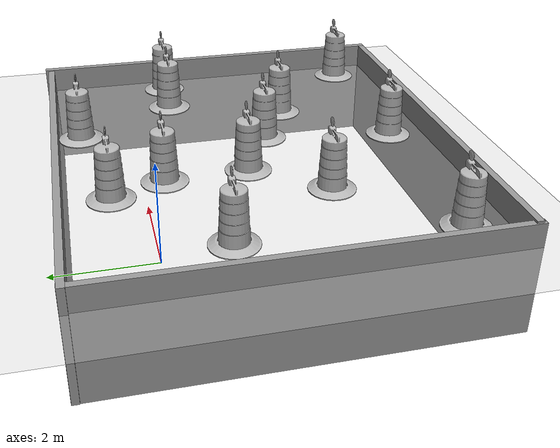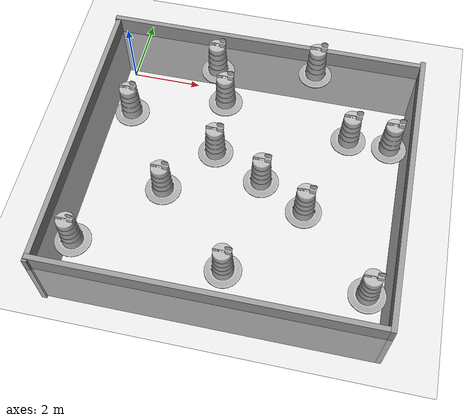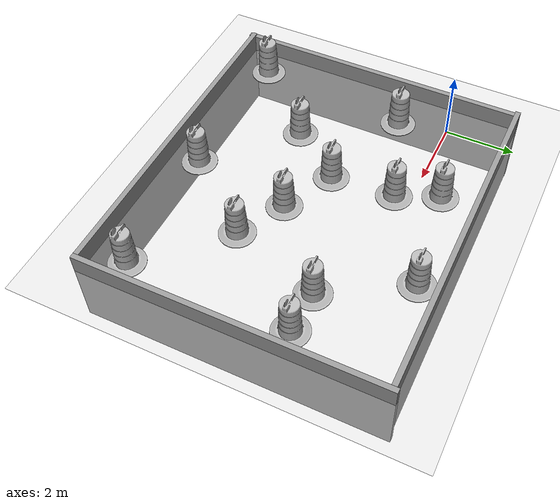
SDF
<sdf version="1.7">
 <world name="default">
  <light name="sun" type="directional">
   <pose>0 0 10 0 -0 0</pose>
   <diffuse>0.8 0.8 0.8 1</diffuse>
   <specular>0.2 0.2 0.2 1</specular>
   <attenuation>
    <range>1000</range>
    <constant>0.9</constant>
    <linear>0.01</linear>
    <quadratic>0.001</quadratic>
   </attenuation>
   <direction>-0.5 0.1 -0.9</direction>
   <spot><inner_angle>0</inner_angle><outer_angle>0</outer_angle><falloff>0</falloff></spot>
  </light>
  <model name="ground_plane">
   <static>1</static>
   <link name="link">
    <collision name="collision">
     <geometry><plane><normal>0 0 1</normal><size>100 100</size></plane></geometry>
     <surface>
      <contact><collide_bitmask>65535</collide_bitmask></contact>
      <friction><ode><mu>100</mu><mu2>50</mu2></ode></friction>
     </surface>
    </collision>
    <visual name="visual">
     <cast_shadows>0</cast_shadows>
     <geometry><plane><normal>0 0 1</normal><size>100 100</size></plane></geometry>
     <material>
      <script><uri>file://media/materials/scripts/gazebo.material</uri><name>Gazebo/Grey</name></script>
     </material>
    </visual>
   </link>
  </model>
  <gravity>0 0 -9.8</gravity>
  <magnetic_field>6e-06 2.3e-05 -4.2e-05</magnetic_field>
  <atmosphere type="adiabatic"/>
  <physics type="ode">
   <max_step_size>0.001</max_step_size>
   <real_time_factor>1</real_time_factor>
   <real_time_update_rate>1000</real_time_update_rate>
  </physics>
  <scene><ambient>0.4 0.4 0.4 1</ambient><background>0.7 0.7 0.7 1</background><shadows>1</shadows></scene>
  <audio><device>default</device></audio>
  <spherical_coordinates>
   <surface_model>EARTH_WGS84</surface_model>
   <latitude_deg>0</latitude_deg>
   <longitude_deg>0</longitude_deg>
   <elevation>0</elevation>
   <heading_deg>0</heading_deg>
  </spherical_coordinates>
  <model name="Arena_0">
   <link name="Wall_1">
    <pose>-4.70693 -0.060981 -1.98555 0 0 -1.5708</pose>
    <visual name="Wall_1_Visual">
     <pose>0 0 1.25 0 -0 0</pose>
     <geometry><box><size>8.75 0.15 2.5</size></box></geometry>
     <material>
      <script><uri>file://media/materials/scripts/gazebo.material</uri><name>Gazebo/Grey</name></script>
      <ambient>1 1 1 1</ambient>
      <shader type="pixel"/>
     </material>
     <meta><layer>0</layer></meta>
    </visual>
    <collision name="Wall_1_Collision">
     <pose>0 0 1.25 0 -0 0</pose>
     <geometry><box><size>8.75 0.15 2.5</size></box></geometry>
     <surface>
      <friction>
       <ode><mu>1</mu><mu2>1</mu2><fdir1>0 0 0</fdir1><slip1>0</slip1><slip2>0</slip2></ode>
       <torsional>
        <coefficient>1</coefficient>
        <patch_radius>0</patch_radius>
        <surface_radius>0</surface_radius>
        <use_patch_radius>1</use_patch_radius>
        <ode><slip>0</slip></ode>
       </torsional>
      </friction>
      <bounce><restitution_coefficient>0</restitution_coefficient><threshold>1e+06</threshold></bounce>
      <contact>
       <collide_without_contact>0</collide_without_contact>
       <collide_without_contact_bitmask>1</collide_without_contact_bitmask>
       <collide_bitmask>1</collide_bitmask>
       <ode>
        <soft_cfm>0</soft_cfm>
        <soft_erp>0.2</soft_erp>
        <kp>1e+13</kp>
        <kd>1</kd>
        <max_vel>0.01</max_vel>
        <min_depth>0</min_depth>
       </ode>
       <bullet>
        <split_impulse>1</split_impulse>
        <split_impulse_penetration_threshold>-0.01</split_impulse_penetration_threshold>
        <soft_cfm>0</soft_cfm>
        <soft_erp>0.2</soft_erp>
        <kp>1e+13</kp>
        <kd>1</kd>
       </bullet>
      </contact>
     </surface>
    </collision>
   </link>
   <link name="Wall_2">
    <pose>0.121352 -4.3 -1.9408 0 -0 0</pose>
    <visual name="Wall_2_Visual">
     <pose>0 0 1.25 0 -0 0</pose>
     <geometry><box><size>9.75 0.15 2.5</size></box></geometry>
     <material>
      <script><uri>file://media/materials/scripts/gazebo.material</uri><name>Gazebo/Grey</name></script>
      <ambient>1 1 1 1</ambient>
      <shader type="pixel"/>
     </material>
     <meta><layer>0</layer></meta>
    </visual>
    <collision name="Wall_2_Collision">
     <pose>0 0 1.25 0 -0 0</pose>
     <geometry><box><size>9.75 0.15 2.5</size></box></geometry>
     <surface>
      <friction>
       <ode><mu>1</mu><mu2>1</mu2><fdir1>0 0 0</fdir1><slip1>0</slip1><slip2>0</slip2></ode>
       <torsional>
        <coefficient>1</coefficient>
        <patch_radius>0</patch_radius>
        <surface_radius>0</surface_radius>
        <use_patch_radius>1</use_patch_radius>
        <ode><slip>0</slip></ode>
       </torsional>
      </friction>
      <bounce><restitution_coefficient>0</restitution_coefficient><threshold>1e+06</threshold></bounce>
      <contact>
       <collide_without_contact>0</collide_without_contact>
       <collide_without_contact_bitmask>1</collide_without_contact_bitmask>
       <collide_bitmask>1</collide_bitmask>
       <ode>
        <soft_cfm>0</soft_cfm>
        <soft_erp>0.2</soft_erp>
        <kp>1e+13</kp>
        <kd>1</kd>
        <max_vel>0.01</max_vel>
        <min_depth>0</min_depth>
       </ode>
       <bullet>
        <split_impulse>1</split_impulse>
        <split_impulse_penetration_threshold>-0.01</split_impulse_penetration_threshold>
        <soft_cfm>0</soft_cfm>
        <soft_erp>0.2</soft_erp>
        <kp>1e+13</kp>
        <kd>1</kd>
       </bullet>
      </contact>
     </surface>
    </collision>
   </link>
   <link name="Wall_3">
    <pose>4.92135 0 -1.93995 0 -0 1.5708</pose>
    <visual name="Wall_3_Visual">
     <pose>0 0 1.25 0 -0 0</pose>
     <geometry><box><size>8.75 0.15 2.5</size></box></geometry>
     <material>
      <script><uri>file://media/materials/scripts/gazebo.material</uri><name>Gazebo/Grey</name></script>
      <ambient>1 1 1 1</ambient>
      <shader type="pixel"/>
     </material>
     <meta><layer>0</layer></meta>
    </visual>
    <collision name="Wall_3_Collision">
     <pose>0 0 1.25 0 -0 0</pose>
     <geometry><box><size>8.75 0.15 2.5</size></box></geometry>
     <surface>
      <friction>
       <ode><mu>1</mu><mu2>1</mu2><fdir1>0 0 0</fdir1><slip1>0</slip1><slip2>0</slip2></ode>
       <torsional>
        <coefficient>1</coefficient>
        <patch_radius>0</patch_radius>
        <surface_radius>0</surface_radius>
        <use_patch_radius>1</use_patch_radius>
        <ode><slip>0</slip></ode>
       </torsional>
      </friction>
      <bounce><restitution_coefficient>0</restitution_coefficient><threshold>1e+06</threshold></bounce>
      <contact>
       <collide_without_contact>0</collide_without_contact>
       <collide_without_contact_bitmask>1</collide_without_contact_bitmask>
       <collide_bitmask>1</collide_bitmask>
       <ode>
        <soft_cfm>0</soft_cfm>
        <soft_erp>0.2</soft_erp>
        <kp>1e+13</kp>
        <kd>1</kd>
        <max_vel>0.01</max_vel>
        <min_depth>0</min_depth>
       </ode>
       <bullet>
        <split_impulse>1</split_impulse>
        <split_impulse_penetration_threshold>-0.01</split_impulse_penetration_threshold>
        <soft_cfm>0</soft_cfm>
        <soft_erp>0.2</soft_erp>
        <kp>1e+13</kp>
        <kd>1</kd>
       </bullet>
      </contact>
     </surface>
    </collision>
   </link>
   <link name="Wall_4">
    <pose>0.054795 4.23432 -1.96261 0 -0 3.14159</pose>
    <visual name="Wall_4_Visual">
     <pose>0 0 1.25 0 -0 0</pose>
     <geometry><box><size>9.75 0.15 2.5</size></box></geometry>
     <material>
      <script><uri>file://media/materials/scripts/gazebo.material</uri><name>Gazebo/Grey</name></script>
      <ambient>1 1 1 1</ambient>
      <shader type="pixel"/>
     </material>
     <meta><layer>0</layer></meta>
    </visual>
    <collision name="Wall_4_Collision">
     <pose>0 0 1.25 0 -0 0</pose>
     <geometry><box><size>9.75 0.15 2.5</size></box></geometry>
     <surface>
      <friction>
       <ode><mu>1</mu><mu2>1</mu2><fdir1>0 0 0</fdir1><slip1>0</slip1><slip2>0</slip2></ode>
       <torsional>
        <coefficient>1</coefficient>
        <patch_radius>0</patch_radius>
        <surface_radius>0</surface_radius>
        <use_patch_radius>1</use_patch_radius>
        <ode><slip>0</slip></ode>
       </torsional>
      </friction>
      <bounce><restitution_coefficient>0</restitution_coefficient><threshold>1e+06</threshold></bounce>
      <contact>
       <collide_without_contact>0</collide_without_contact>
       <collide_without_contact_bitmask>1</collide_without_contact_bitmask>
       <collide_bitmask>1</collide_bitmask>
       <ode>
        <soft_cfm>0</soft_cfm>
        <soft_erp>0.2</soft_erp>
        <kp>1e+13</kp>
        <kd>1</kd>
        <max_vel>0.01</max_vel>
        <min_depth>0</min_depth>
       </ode>
       <bullet>
        <split_impulse>1</split_impulse>
        <split_impulse_penetration_threshold>-0.01</split_impulse_penetration_threshold>
        <soft_cfm>0</soft_cfm>
        <soft_erp>0.2</soft_erp>
        <kp>1e+13</kp>
        <kd>1</kd>
       </bullet>
      </contact>
     </surface>
    </collision>
   </link>
   <static>1</static>
   <pose>3.71332 -2.49759 0 0 -0 0</pose>
  </model>
  <model name="Construction Barrel">
   <link name="link">
    <inertial>
     <pose>0 0 0.4 0 -0 0</pose>
     <mass>500</mass>
     <inertia><ixx>51.2096</ixx><iyy>51.2096</iyy><izz>25</izz><ixy>0</ixy><ixz>0</ixz><iyz>0</iyz></inertia>
    </inertial>
    <collision name="collision">
     <geometry><mesh><uri>model://construction_barrel/meshes/construction_barrel.dae</uri></mesh></geometry>
    </collision>
    <visual name="visual">
     <geometry><mesh><uri>model://construction_barrel/meshes/construction_barrel.dae</uri></mesh></geometry>
    </visual>
   </link>
   <pose>0.290686 -1.39648 -1e-06 3e-06 7e-06 -2.5e-05</pose>
  </model>
  <model name="Construction Barrel_0">
   <link name="link">
    <inertial>
     <pose>0 0 0.4 0 -0 0</pose>
     <mass>500</mass>
     <inertia><ixx>51.2096</ixx><iyy>51.2096</iyy><izz>25</izz><ixy>0</ixy><ixz>0</ixz><iyz>0</iyz></inertia>
    </inertial>
    <collision name="collision">
     <geometry><mesh><uri>model://construction_barrel/meshes/construction_barrel.dae</uri></mesh></geometry>
    </collision>
    <visual name="visual">
     <geometry><mesh><uri>model://construction_barrel/meshes/construction_barrel.dae</uri></mesh></geometry>
    </visual>
   </link>
   <pose>2.46104 0.694995 -1e-06 2e-06 -2e-06 -2.5e-05</pose>
  </model>
  <model name="Construction Barrel_1">
   <link name="link">
    <inertial>
     <pose>0 0 0.4 0 -0 0</pose>
     <mass>500</mass>
     <inertia><ixx>51.2096</ixx><iyy>51.2096</iyy><izz>25</izz><ixy>0</ixy><ixz>0</ixz><iyz>0</iyz></inertia>
    </inertial>
    <collision name="collision">
     <geometry><mesh><uri>model://construction_barrel/meshes/construction_barrel.dae</uri></mesh></geometry>
    </collision>
    <visual name="visual">
     <geometry><mesh><uri>model://construction_barrel/meshes/construction_barrel.dae</uri></mesh></geometry>
    </visual>
   </link>
   <pose>2.95702 -0.464641 -1e-06 1e-06 4e-06 -2.3e-05</pose>
  </model>
  <model name="Construction Barrel_2">
   <link name="link">
    <inertial>
     <pose>0 0 0.4 0 -0 0</pose>
     <mass>500</mass>
     <inertia><ixx>51.2096</ixx><iyy>51.2096</iyy><izz>25</izz><ixy>0</ixy><ixz>0</ixz><iyz>0</iyz></inertia>
    </inertial>
    <collision name="collision">
     <geometry><mesh><uri>model://construction_barrel/meshes/construction_barrel.dae</uri></mesh></geometry>
    </collision>
    <visual name="visual">
     <geometry><mesh><uri>model://construction_barrel/meshes/construction_barrel.dae</uri></mesh></geometry>
    </visual>
   </link>
   <pose>3.06267 -2.28856 1e-06 3e-06 2e-06 -2e-05</pose>
  </model>
  <model name="Construction Barrel_3">
   <link name="link">
    <inertial>
     <pose>0 0 0.4 0 -0 0</pose>
     <mass>500</mass>
     <inertia><ixx>51.2096</ixx><iyy>51.2096</iyy><izz>25</izz><ixy>0</ixy><ixz>0</ixz><iyz>0</iyz></inertia>
    </inertial>
    <collision name="collision">
     <geometry><mesh><uri>model://construction_barrel/meshes/construction_barrel.dae</uri></mesh></geometry>
    </collision>
    <visual name="visual">
     <geometry><mesh><uri>model://construction_barrel/meshes/construction_barrel.dae</uri></mesh></geometry>
    </visual>
   </link>
   <pose>1.88498 -3.80125 -0 1e-06 -1e-06 -1.8e-05</pose>
  </model>
  <model name="Construction Barrel_4">
   <link name="link">
    <inertial>
     <pose>0 0 0.4 0 -0 0</pose>
     <mass>500</mass>
     <inertia><ixx>51.2096</ixx><iyy>51.2096</iyy><izz>25</izz><ixy>0</ixy><ixz>0</ixz><iyz>0</iyz></inertia>
    </inertial>
    <collision name="collision">
     <geometry><mesh><uri>model://construction_barrel/meshes/construction_barrel.dae</uri></mesh></geometry>
    </collision>
    <visual name="visual">
     <geometry><mesh><uri>model://construction_barrel/meshes/construction_barrel.dae</uri></mesh></geometry>
    </visual>
   </link>
   <pose>-0.101823 -5.85085 0 0 0 -1.7e-05</pose>
  </model>
  <model name="Construction Barrel_5">
   <link name="link">
    <inertial>
     <pose>0 0 0.4 0 -0 0</pose>
     <mass>500</mass>
     <inertia><ixx>51.2096</ixx><iyy>51.2096</iyy><izz>25</izz><ixy>0</ixy><ixz>0</ixz><iyz>0</iyz></inertia>
    </inertial>
    <collision name="collision">
     <geometry><mesh><uri>model://construction_barrel/meshes/construction_barrel.dae</uri></mesh></geometry>
    </collision>
    <visual name="visual">
     <geometry><mesh><uri>model://construction_barrel/meshes/construction_barrel.dae</uri></mesh></geometry>
    </visual>
   </link>
   <pose>4.08595 -5.89269 -2e-06 8e-06 -4e-06 -1.7e-05</pose>
  </model>
  <model name="Construction Barrel_6">
   <link name="link">
    <inertial>
     <pose>0 0 0.4 0 -0 0</pose>
     <mass>500</mass>
     <inertia><ixx>51.2096</ixx><iyy>51.2096</iyy><izz>25</izz><ixy>0</ixy><ixz>0</ixz><iyz>0</iyz></inertia>
    </inertial>
    <collision name="collision">
     <geometry><mesh><uri>model://construction_barrel/meshes/construction_barrel.dae</uri></mesh></geometry>
    </collision>
    <visual name="visual">
     <geometry><mesh><uri>model://construction_barrel/meshes/construction_barrel.dae</uri></mesh></geometry>
    </visual>
   </link>
   <pose>4.54444 -3.00407 -2e-06 2e-06 7e-06 -1.5e-05</pose>
  </model>
  <model name="Construction Barrel_7">
   <link name="link">
    <inertial>
     <pose>0 0 0.4 0 -0 0</pose>
     <mass>500</mass>
     <inertia><ixx>51.2096</ixx><iyy>51.2096</iyy><izz>25</izz><ixy>0</ixy><ixz>0</ixz><iyz>0</iyz></inertia>
    </inertial>
    <collision name="collision">
     <geometry><mesh><uri>model://construction_barrel/meshes/construction_barrel.dae</uri></mesh></geometry>
    </collision>
    <visual name="visual">
     <geometry><mesh><uri>model://construction_barrel/meshes/construction_barrel.dae</uri></mesh></geometry>
    </visual>
   </link>
   <pose>7.97803 -1.12489 -0 0 0 -1.1e-05</pose>
  </model>
  <model name="Construction Barrel_8">
   <link name="link">
    <inertial>
     <pose>0 0 0.4 0 -0 0</pose>
     <mass>500</mass>
     <inertia><ixx>51.2096</ixx><iyy>51.2096</iyy><izz>25</izz><ixy>0</ixy><ixz>0</ixz><iyz>0</iyz></inertia>
    </inertial>
    <collision name="collision">
     <geometry><mesh><uri>model://construction_barrel/meshes/construction_barrel.dae</uri></mesh></geometry>
    </collision>
    <visual name="visual">
     <geometry><mesh><uri>model://construction_barrel/meshes/construction_barrel.dae</uri></mesh></geometry>
    </visual>
   </link>
   <pose>6.78278 -1.09482 -1e-06 3e-06 1e-05 -1.1e-05</pose>
  </model>
  <model name="Construction Barrel_9">
   <link name="link">
    <inertial>
     <pose>0 0 0.4 0 -0 0</pose>
     <mass>500</mass>
     <inertia><ixx>51.2096</ixx><iyy>51.2096</iyy><izz>25</izz><ixy>0</ixy><ixz>0</ixz><iyz>0</iyz></inertia>
    </inertial>
    <collision name="collision">
     <geometry><mesh><uri>model://construction_barrel/meshes/construction_barrel.dae</uri></mesh></geometry>
    </collision>
    <visual name="visual">
     <geometry><mesh><uri>model://construction_barrel/meshes/construction_barrel.dae</uri></mesh></geometry>
    </visual>
   </link>
   <pose>5.44684 1.15152 -1e-06 2e-06 -1e-06 -6e-06</pose>
  </model>
  <model name="Construction Barrel_10">
   <link name="link">
    <inertial>
     <pose>0 0 0.4 0 -0 0</pose>
     <mass>500</mass>
     <inertia><ixx>51.2096</ixx><iyy>51.2096</iyy><izz>25</izz><ixy>0</ixy><ixz>0</ixz><iyz>0</iyz></inertia>
    </inertial>
    <collision name="collision">
     <geometry><mesh><uri>model://construction_barrel/meshes/construction_barrel.dae</uri></mesh></geometry>
    </collision>
    <visual name="visual">
     <geometry><mesh><uri>model://construction_barrel/meshes/construction_barrel.dae</uri></mesh></geometry>
    </visual>
   </link>
   <pose>5.88587 -3.71053 -0 0 0 -6e-06</pose>
  </model>
  <model name="Construction Barrel_11">
   <link name="link">
    <inertial>
     <pose>0 0 0.4 0 -0 0</pose>
     <mass>500</mass>
     <inertia><ixx>51.2096</ixx><iyy>51.2096</iyy><izz>25</izz><ixy>0</ixy><ixz>0</ixz><iyz>0</iyz></inertia>
    </inertial>
    <collision name="collision">
     <geometry><mesh><uri>model://construction_barrel/meshes/construction_barrel.dae</uri></mesh></geometry>
    </collision>
    <visual name="visual">
     <geometry><mesh><uri>model://construction_barrel/meshes/construction_barrel.dae</uri></mesh></geometry>
    </visual>
   </link>
   <pose>7.91591 -5.79967 -0 3e-06 -1e-06 -1.6e-05</pose>
  </model>
 </world>
</sdf>
